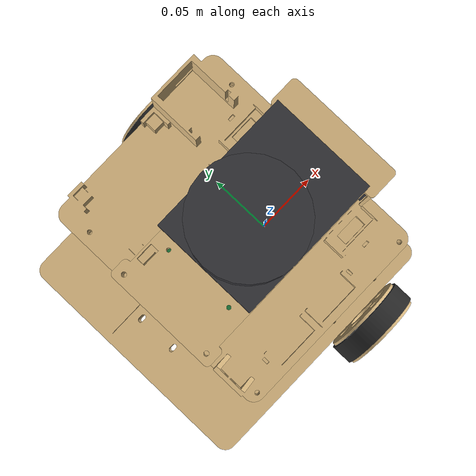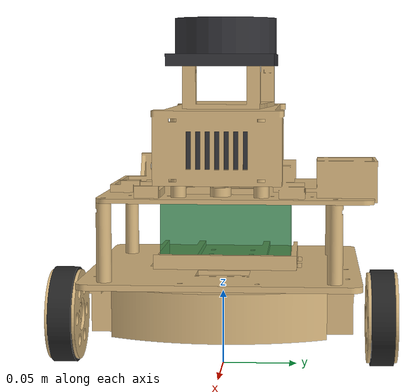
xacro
<?xml version="1.0"?>
<robot name="rover" xmlns:xacro="http://www.ros.org/wiki/xacro">

  <!-- true when spawned in Gazebo: adds ros2_control and physics settings. -->
  <xacro:arg name="use_gazebo" default="false"/>

  <xacro:property name="PI" value="3.14159265358979"/>
  <xacro:property name="mm" value="0.001"/>
  <xacro:property name="mesh_scale" value="0.001 0.001 0.001"/>
  <xacro:property name="mesh_dir" value="package://rover_sim/meshes"/>

  <!-- ===================================================== drive wheels -->
  <xacro:property name="wheel_radius" value="${32.5 * mm}"/>     <!-- 61 mm rim + 3.5 mm TPU tyre -->
  <xacro:property name="wheel_width" value="${20.0 * mm}"/>
  <xacro:property name="wheel_separation" value="${214.6 * mm}"/> <!-- track width, centre to centre -->
  <xacro:property name="wheel_x" value="0.0"/>
  <!-- The wheel mesh's inner face sits 10 mm inboard of the wheel centre;
       the tyre mesh's inner face sits 7.8 mm inboard. -->
  <xacro:property name="wheel_mesh_offset" value="${10.0 * mm}"/>
  <xacro:property name="tyre_mesh_offset" value="${7.8 * mm}"/>

  <!-- base_link is on the axle, so it sits one wheel radius above the floor. -->
  <xacro:property name="base_z" value="${wheel_radius}"/>

  <!-- ========================================================== chassis -->
  <!-- Positions below are in the base_footprint frame (floor = 0) unless
       the name ends in _bl (base_link frame). -->
  <xacro:property name="deck_x_min" value="${-140.0 * mm}"/>
  <xacro:property name="deck_x_max" value="${55.0 * mm}"/>
  <xacro:property name="deck_width" value="${186.0 * mm}"/>
  <xacro:property name="deck_t" value="${4.0 * mm}"/>
  <xacro:property name="deck_bottom_z" value="${58.0 * mm}"/>
  <xacro:property name="deck_length" value="${deck_x_max - deck_x_min}"/>
  <xacro:property name="deck_cx" value="${(deck_x_max + deck_x_min) / 2}"/>

  <!-- Electronics deck. Its posts carry the compute deck above it. -->
  <xacro:property name="upper_x_min" value="${-100.0 * mm}"/>
  <xacro:property name="upper_x_max" value="${50.0 * mm}"/>
  <xacro:property name="upper_y_min" value="${-80.0 * mm}"/>
  <xacro:property name="upper_y_max" value="${100.0 * mm}"/>
  <xacro:property name="upper_t" value="${3.0 * mm}"/>
  <xacro:property name="upper_bottom_z" value="${114.0 * mm}"/>
  <xacro:property name="upper_length" value="${upper_x_max - upper_x_min}"/>
  <xacro:property name="upper_width" value="${upper_y_max - upper_y_min}"/>
  <xacro:property name="upper_cx" value="${(upper_x_max + upper_x_min) / 2}"/>
  <xacro:property name="upper_cy" value="${(upper_y_max + upper_y_min) / 2}"/>
  <xacro:property name="upper_top_z" value="${upper_bottom_z + upper_t}"/>
  <!-- The amp holder's dial wall stands 2 mm past the +Y edge, so the mesh
       spans Y -80..102 and is centred at 11 mm, not on the plate. -->
  <xacro:property name="upper_mesh_cy" value="${11.0 * mm}"/>

  <!-- Compute deck: the Pi hangs under it, the speaker grille is its front
       wall and the lidar mount sits on top. Collision covers the plate only. -->
  <xacro:property name="compute_x_min" value="${-100.0 * mm}"/>
  <xacro:property name="compute_x_max" value="${61.0 * mm}"/>
  <xacro:property name="compute_width" value="${72.0 * mm}"/>
  <xacro:property name="compute_t" value="${4.0 * mm}"/>
  <xacro:property name="compute_bottom_z" value="${170.0 * mm}"/>
  <xacro:property name="compute_top_z" value="${compute_bottom_z + compute_t}"/>
  <xacro:property name="compute_cx" value="${(compute_x_max + compute_x_min) / 2}"/>
  <!-- The compute deck mesh is centred on its full outline, grille included. -->
  <xacro:property name="compute_mesh_x" value="${-19.5 * mm}"/>

  <!-- Front bumper arc, approximated by its bounding box. -->
  <xacro:property name="bumper_x_min" value="${35.0 * mm}"/>
  <xacro:property name="bumper_x_max" value="${63.0 * mm}"/>
  <xacro:property name="bumper_width" value="${140.0 * mm}"/>
  <xacro:property name="bumper_z_min" value="${26.0 * mm}"/>
  <xacro:property name="bumper_z_max" value="${58.0 * mm}"/>

  <!-- Gearmotors (25 mm gearbox), body running inboard from the mount face. -->
  <xacro:property name="motor_radius" value="${12.5 * mm}"/>
  <xacro:property name="motor_y_inner" value="${2.0 * mm}"/>
  <xacro:property name="motor_y_outer" value="${83.8 * mm}"/>
  <xacro:property name="motor_z" value="${39.5 * mm}"/>
  <xacro:property name="motor_length" value="${motor_y_outer - motor_y_inner}"/>
  <!-- Motor cradle mesh origin, per side. -->
  <xacro:property name="cradle_y" value="${87.8 * mm}"/>
  <xacro:property name="cradle_z" value="${40.875 * mm}"/>

  <!-- Battery pack envelope (X x Y x Z) and centre. -->
  <xacro:property name="battery_size_x" value="${70.0 * mm}"/>
  <xacro:property name="battery_size_y" value="${90.0 * mm}"/>
  <xacro:property name="battery_size_z" value="${45.0 * mm}"/>
  <xacro:property name="battery_x" value="${-52.5 * mm}"/>
  <xacro:property name="battery_z" value="${88.5 * mm}"/>

  <!-- Raspberry Pi 3B+, hanging under the compute deck, components down.
       The box is the board plus the parts below it. -->
  <xacro:property name="pi_x_min" value="${-89.0 * mm}"/>
  <xacro:property name="pi_x_max" value="${-4.0 * mm}"/>
  <xacro:property name="pi_width" value="${56.0 * mm}"/>
  <xacro:property name="pi_z_min" value="${145.6 * mm}"/>
  <xacro:property name="pi_z_max" value="${164.0 * mm}"/>

  <!-- Speaker behind the front grille, facing forward. -->
  <xacro:property name="speaker_x_min" value="${41.0 * mm}"/>
  <xacro:property name="speaker_x_max" value="${57.5 * mm}"/>
  <xacro:property name="speaker_width" value="${76.0 * mm}"/>
  <xacro:property name="speaker_z_min" value="${132.0 * mm}"/>
  <xacro:property name="speaker_z_max" value="${166.0 * mm}"/>

  <!-- =========================================================== caster -->
  <xacro:property name="caster_x" value="${-100.0 * mm}"/>
  <xacro:property name="caster_radius" value="${12.5 * mm}"/>   <!-- 25 mm wheel, estimate -->
  <xacro:property name="caster_height" value="${38.0 * mm}"/>
  <xacro:property name="caster_spacer_h" value="${20.0 * mm}"/>
  <!-- The spacer sits on the caster plate; its mesh origin is its bottom. -->
  <xacro:property name="caster_spacer_z" value="${caster_height}"/>

  <!-- ============================================================ lidar -->
  <xacro:property name="lidar_x" value="${-25.0 * mm}"/>          <!-- spin axis -->
  <xacro:property name="lidar_z" value="${223.0 * mm}"/>          <!-- scan plane -->
  <xacro:property name="lidar_mount_x" value="${-18.375 * mm}"/>  <!-- mount mesh origin -->
  <xacro:property name="lidar_base_z" value="${202.0 * mm}"/>     <!-- underside of the lidar base -->
  <xacro:property name="lidar_base_x_min" value="${-60.24 * mm}"/>
  <xacro:property name="lidar_base_length" value="${96.74 * mm}"/>
  <xacro:property name="lidar_base_width" value="${70.28 * mm}"/>
  <xacro:property name="lidar_base_t" value="${8.0 * mm}"/>       <!-- estimate -->
  <xacro:property name="lidar_head_radius" value="${35.0 * mm}"/>
  <xacro:property name="lidar_top_z" value="${234.5 * mm}"/>

  <!-- ============================================================ camera -->
  <!-- Space reserved between the decks; no camera chosen yet. -->
  <xacro:property name="camera_x" value="${55.0 * mm}"/>
  <xacro:property name="camera_z" value="${83.0 * mm}"/>

  <!-- ============================================================ masses -->
  <!-- Printed parts: slicer estimates (PLA, 15 % infill), or STL volume
       x 0.80 g/cm3 for parts not sliced yet ("volume estimate"). -->
  <xacro:property name="lower_deck_mass" value="0.1246"/>
  <xacro:property name="upper_deck_mass" value="0.1048"/>      <!-- volume estimate, with the amp stop wall -->
  <xacro:property name="compute_deck_mass" value="0.0476"/>    <!-- volume estimate -->
  <xacro:property name="lidar_mount_mass" value="0.0173"/>     <!-- volume estimate -->
  <xacro:property name="cradle_mass" value="0.0127"/>          <!-- each -->
  <xacro:property name="caster_spacer_mass" value="0.0104"/>   <!-- volume estimate -->
  <xacro:property name="bumper_mass" value="0.0277"/>
  <xacro:property name="wheel_mass" value="${0.0179 + 0.0147}"/> <!-- PLA rim + TPU tyre, volume estimates -->
  <!-- Purchased parts: "weighed" values are kitchen-scale readings (+/- 1 g);
       the rest are datasheet or typical values until weighed. -->
  <xacro:property name="motor_mass" value="0.100"/>            <!-- each, spec estimate (not arrived) -->
  <xacro:property name="coupler_mass" value="0.012"/>          <!-- each, with screws -->
  <xacro:property name="esp32_mass" value="0.041"/>            <!-- with breakout board, weighed -->
  <xacro:property name="driver_mass" value="0.006"/>           <!-- each motor driver, weighed -->
  <xacro:property name="buck_mass" value="0.025"/>
  <xacro:property name="power_parts_mass" value="0.030"/>      <!-- connectors, capacitor, jack -->
  <xacro:property name="pi_mass" value="0.050"/>               <!-- bare board, weighed -->
  <xacro:property name="speaker_mass" value="0.025"/>          <!-- weighed -->
  <xacro:property name="amp_mass" value="0.005"/>              <!-- PAM8403 board, weighed -->
  <xacro:property name="lidar_mass" value="0.170"/>
  <xacro:property name="lidar_usb_mass" value="0.015"/>        <!-- USB adapter + cable, assumed -->
  <xacro:property name="wiring_mass" value="0.060"/>           <!-- wires + fasteners, assumed -->
  <xacro:property name="battery_mass" value="0.350"/>          <!-- assumed -->
  <xacro:property name="caster_mass" value="0.030"/>

  <xacro:property name="base_items" value="${[
      (lower_deck_mass, deck_cx, 0, deck_bottom_z + deck_t / 2),
      (upper_deck_mass, upper_cx, upper_cy / 2, upper_bottom_z + 8 * mm),
      (compute_deck_mass, compute_cx + 10 * mm, 0, compute_top_z - 8 * mm),
      (lidar_mount_mass, lidar_mount_x, 0, compute_top_z + 14 * mm),
      (cradle_mass, 0, cradle_y, cradle_z),
      (cradle_mass, 0, -cradle_y, cradle_z),
      (caster_spacer_mass, caster_x, 0, caster_spacer_z + caster_spacer_h / 2),
      (bumper_mass, (bumper_x_min + bumper_x_max) / 2, 0, (bumper_z_min + bumper_z_max) / 2),
      (2 * motor_mass, 0, 0, motor_z),
      (2 * coupler_mass, 0, 0, base_z),
      (esp32_mass, -45 * mm, 66 * mm, 137.5 * mm),
      (2 * driver_mass, 26 * mm, 0, 128 * mm),
      (buck_mass, -54 * mm, -16 * mm, 129.5 * mm),
      (power_parts_mass, -40 * mm, -50 * mm, upper_top_z + 6 * mm),
      (pi_mass, (pi_x_min + pi_x_max) / 2, 0, 157 * mm),
      (speaker_mass, (speaker_x_min + speaker_x_max) / 2, 0, (speaker_z_min + speaker_z_max) / 2),
      (amp_mass, 15.75 * mm, 81.5 * mm, 128.5 * mm),
      (lidar_mass, -17 * mm, 0, 207 * mm),
      (lidar_usb_mass, -30 * mm, 0, 183 * mm),
      (wiring_mass, -20 * mm, 0, 100 * mm),
      (battery_mass, battery_x, 0, battery_z)]}"/>
  <xacro:property name="base_mass" value="${python.sum(i[0] for i in base_items)}"/>
  <xacro:property name="base_com_x" value="${python.sum(i[0] * i[1] for i in base_items) / base_mass}"/>
  <xacro:property name="base_com_y" value="${python.sum(i[0] * i[2] for i in base_items) / base_mass}"/>
  <xacro:property name="base_com_z" value="${python.sum(i[0] * i[3] for i in base_items) / base_mass}"/>
  <xacro:property name="base_box_x" value="${bumper_x_max - deck_x_min}"/>
  <xacro:property name="base_box_y" value="${deck_width}"/>
  <xacro:property name="base_box_z" value="${lidar_top_z - (motor_z - motor_radius)}"/>

  <!-- ======================================================== materials -->
  <material name="pla">
    <color rgba="0.85 0.72 0.50 1.0"/>
  </material>
  <material name="tyre">
    <color rgba="0.15 0.15 0.15 1.0"/>
  </material>
  <material name="metal">
    <color rgba="0.60 0.62 0.66 1.0"/>
  </material>
  <material name="board">
    <color rgba="0.10 0.45 0.20 1.0"/>
  </material>
  <material name="dark">
    <color rgba="0.20 0.20 0.22 1.0"/>
  </material>
  <material name="battery">
    <color rgba="0.20 0.55 0.30 0.8"/>
  </material>

  <!-- ===================================================== inertia macros -->
  <xacro:macro name="box_inertial" params="mass x y z *origin">
    <inertial>
      <xacro:insert_block name="origin"/>
      <mass value="${mass}"/>
      <inertia ixx="${mass * (y * y + z * z) / 12}" ixy="0" ixz="0"
               iyy="${mass * (x * x + z * z) / 12}" iyz="0"
               izz="${mass * (x * x + y * y) / 12}"/>
    </inertial>
  </xacro:macro>

  <!-- Solid cylinder whose axis is the link's Y axis. -->
  <xacro:macro name="cylinder_y_inertial" params="mass radius length">
    <inertial>
      <origin xyz="0 0 0" rpy="0 0 0"/>
      <mass value="${mass}"/>
      <inertia ixx="${mass * (3 * radius * radius + length * length) / 12}" ixy="0" ixz="0"
               iyy="${mass * radius * radius / 2}" iyz="0"
               izz="${mass * (3 * radius * radius + length * length) / 12}"/>
    </inertial>
  </xacro:macro>

  <xacro:macro name="sphere_inertial" params="mass radius">
    <inertial>
      <origin xyz="0 0 0" rpy="0 0 0"/>
      <mass value="${mass}"/>
      <inertia ixx="${2 * mass * radius * radius / 5}" ixy="0" ixz="0"
               iyy="${2 * mass * radius * radius / 5}" iyz="0"
               izz="${2 * mass * radius * radius / 5}"/>
    </inertial>
  </xacro:macro>

  <!-- ===================================================== base links -->
  <link name="base_footprint"/>

  <joint name="base_joint" type="fixed">
    <parent link="base_footprint"/>
    <child link="base_link"/>
    <origin xyz="0 0 ${base_z}" rpy="0 0 0"/>
  </joint>

  <link name="base_link">
    <!-- Meshes are exported centred in XY with their lowest point at Z = 0;
         each origin below puts the part back where it sits on the rover. -->
    <visual>
      <origin xyz="${deck_cx} 0 ${deck_bottom_z - base_z}" rpy="0 0 0"/>
      <geometry>
        <mesh filename="${mesh_dir}/lower_deck.stl" scale="${mesh_scale}"/>
      </geometry>
      <material name="pla"/>
    </visual>
    <visual>
      <origin xyz="${upper_cx} ${upper_mesh_cy} ${upper_bottom_z - base_z}" rpy="0 0 0"/>
      <geometry>
        <mesh filename="${mesh_dir}/upper_deck.stl" scale="${mesh_scale}"/>
      </geometry>
      <material name="pla"/>
    </visual>
    <visual>
      <origin xyz="${compute_mesh_x} 0 ${compute_top_z - base_z}" rpy="${PI} 0 0"/>
      <geometry>
        <mesh filename="${mesh_dir}/compute_deck.stl" scale="${mesh_scale}"/>
      </geometry>
      <material name="pla"/>
    </visual>
    <visual>
      <origin xyz="${lidar_mount_x} 0 ${compute_top_z - base_z}" rpy="0 0 0"/>
      <geometry>
        <mesh filename="${mesh_dir}/lidar_mount.stl" scale="${mesh_scale}"/>
      </geometry>
      <material name="pla"/>
    </visual>
    <!-- The bumper, cradles and compute deck are exported in their print
         orientation. -->
    <visual>
      <origin xyz="${(bumper_x_min + bumper_x_max) / 2} 0 ${bumper_z_max - base_z}" rpy="${PI} 0 0"/>
      <geometry>
        <mesh filename="${mesh_dir}/front_bumper.stl" scale="${mesh_scale}"/>
      </geometry>
      <material name="pla"/>
    </visual>
    <visual>
      <origin xyz="${caster_x} 0 ${caster_spacer_z - base_z}" rpy="0 0 0"/>
      <geometry>
        <mesh filename="${mesh_dir}/caster_spacer.stl" scale="${mesh_scale}"/>
      </geometry>
      <material name="pla"/>
    </visual>
    <visual>
      <origin xyz="0 ${cradle_y} ${cradle_z - base_z}" rpy="${PI / 2} 0 0"/>
      <geometry>
        <mesh filename="${mesh_dir}/motor_cradle.stl" scale="${mesh_scale}"/>
      </geometry>
      <material name="pla"/>
    </visual>
    <visual>
      <origin xyz="0 ${-cradle_y} ${cradle_z - base_z}" rpy="${PI / 2} 0 ${PI}"/>
      <geometry>
        <mesh filename="${mesh_dir}/motor_cradle.stl" scale="${mesh_scale}"/>
      </geometry>
      <material name="pla"/>
    </visual>
    <!-- Purchased parts have no mesh; drawn as primitives. -->
    <visual>
      <origin xyz="0 ${(motor_y_inner + motor_y_outer) / 2} ${motor_z - base_z}" rpy="${PI / 2} 0 0"/>
      <geometry>
        <cylinder radius="${motor_radius}" length="${motor_length}"/>
      </geometry>
      <material name="metal"/>
    </visual>
    <visual>
      <origin xyz="0 ${-(motor_y_inner + motor_y_outer) / 2} ${motor_z - base_z}" rpy="${PI / 2} 0 0"/>
      <geometry>
        <cylinder radius="${motor_radius}" length="${motor_length}"/>
      </geometry>
      <material name="metal"/>
    </visual>
    <visual>
      <origin xyz="${battery_x} 0 ${battery_z - base_z}" rpy="0 0 0"/>
      <geometry>
        <box size="${battery_size_x} ${battery_size_y} ${battery_size_z}"/>
      </geometry>
      <material name="battery"/>
    </visual>
    <visual>
      <origin xyz="${(pi_x_min + pi_x_max) / 2} 0 ${(pi_z_min + pi_z_max) / 2 - base_z}" rpy="0 0 0"/>
      <geometry>
        <box size="${pi_x_max - pi_x_min} ${pi_width} ${pi_z_max - pi_z_min}"/>
      </geometry>
      <material name="board"/>
    </visual>
    <visual>
      <origin xyz="${(speaker_x_min + speaker_x_max) / 2} 0 ${(speaker_z_min + speaker_z_max) / 2 - base_z}" rpy="0 0 0"/>
      <geometry>
        <box size="${speaker_x_max - speaker_x_min} ${speaker_width} ${speaker_z_max - speaker_z_min}"/>
      </geometry>
      <material name="dark"/>
    </visual>
    <visual>
      <origin xyz="${lidar_base_x_min + lidar_base_length / 2} 0 ${lidar_base_z + lidar_base_t / 2 - base_z}" rpy="0 0 0"/>
      <geometry>
        <box size="${lidar_base_length} ${lidar_base_width} ${lidar_base_t}"/>
      </geometry>
      <material name="dark"/>
    </visual>
    <visual>
      <origin xyz="${lidar_x} 0 ${(lidar_base_z + lidar_base_t + lidar_top_z) / 2 - base_z}" rpy="0 0 0"/>
      <geometry>
        <cylinder radius="${lidar_head_radius}" length="${lidar_top_z - lidar_base_z - lidar_base_t}"/>
      </geometry>
      <material name="dark"/>
    </visual>

    <collision>
      <origin xyz="${deck_cx} 0 ${deck_bottom_z + deck_t / 2 - base_z}" rpy="0 0 0"/>
      <geometry>
        <box size="${deck_length} ${deck_width} ${deck_t}"/>
      </geometry>
    </collision>
    <collision>
      <origin xyz="${upper_cx} ${upper_cy} ${upper_bottom_z + upper_t / 2 - base_z}" rpy="0 0 0"/>
      <geometry>
        <box size="${upper_length} ${upper_width} ${upper_t}"/>
      </geometry>
    </collision>
    <collision>
      <origin xyz="${compute_cx} 0 ${compute_bottom_z + compute_t / 2 - base_z}" rpy="0 0 0"/>
      <geometry>
        <box size="${compute_x_max - compute_x_min} ${compute_width} ${compute_t}"/>
      </geometry>
    </collision>
    <collision>
      <origin xyz="${(speaker_x_min + speaker_x_max) / 2} 0 ${(speaker_z_min + speaker_z_max) / 2 - base_z}" rpy="0 0 0"/>
      <geometry>
        <box size="${speaker_x_max - speaker_x_min} ${speaker_width} ${speaker_z_max - speaker_z_min}"/>
      </geometry>
    </collision>
    <collision>
      <origin xyz="${lidar_x} 0 ${(lidar_base_z + lidar_top_z) / 2 - base_z}" rpy="0 0 0"/>
      <geometry>
        <cylinder radius="${lidar_head_radius}" length="${lidar_top_z - lidar_base_z}"/>
      </geometry>
    </collision>
    <collision>
      <origin xyz="${(bumper_x_min + bumper_x_max) / 2} 0 ${(bumper_z_min + bumper_z_max) / 2 - base_z}" rpy="0 0 0"/>
      <geometry>
        <box size="${bumper_x_max - bumper_x_min} ${bumper_width} ${bumper_z_max - bumper_z_min}"/>
      </geometry>
    </collision>
    <collision>
      <origin xyz="0 0 ${motor_z - base_z}" rpy="${PI / 2} 0 0"/>
      <geometry>
        <cylinder radius="${motor_radius}" length="${2 * motor_y_outer}"/>
      </geometry>
    </collision>
    <collision>
      <origin xyz="${battery_x} 0 ${battery_z - base_z}" rpy="0 0 0"/>
      <geometry>
        <box size="${battery_size_x} ${battery_size_y} ${battery_size_z}"/>
      </geometry>
    </collision>

    <xacro:box_inertial mass="${base_mass}" x="${base_box_x}" y="${base_box_y}" z="${base_box_z}">
      <origin xyz="${base_com_x} ${base_com_y} ${base_com_z - base_z}" rpy="0 0 0"/>
    </xacro:box_inertial>
  </link>

  <!-- ============================================================ wheels -->
  <!-- side: 1 = left (+Y), -1 = right (-Y). Both joints spin about +Y, so a
       positive velocity drives the rover forward on both sides. -->
  <xacro:macro name="drive_wheel" params="prefix side">
    <link name="${prefix}_wheel_link">
      <visual>
        <origin xyz="0 ${-side * wheel_mesh_offset} 0" rpy="${-PI / 2} 0 ${(1 - side) * PI / 2}"/>
        <geometry>
          <mesh filename="${mesh_dir}/drive_wheel.stl" scale="${mesh_scale}"/>
        </geometry>
        <material name="pla"/>
      </visual>
      <visual>
        <origin xyz="0 ${-side * tyre_mesh_offset} 0" rpy="${-PI / 2} 0 ${(1 - side) * PI / 2}"/>
        <geometry>
          <mesh filename="${mesh_dir}/tyre.stl" scale="${mesh_scale}"/>
        </geometry>
        <material name="tyre"/>
      </visual>
      <collision>
        <xacro:if value="$(arg use_gazebo)">
          <geometry>
            <sphere radius="${wheel_radius}"/>
          </geometry>
        </xacro:if>
        <xacro:unless value="$(arg use_gazebo)">
          <origin xyz="0 0 0" rpy="${PI / 2} 0 0"/>
          <geometry>
            <cylinder radius="${wheel_radius}" length="${wheel_width}"/>
          </geometry>
        </xacro:unless>
      </collision>
      <xacro:cylinder_y_inertial mass="${wheel_mass}" radius="${wheel_radius}" length="${wheel_width}"/>
    </link>

    <joint name="${prefix}_wheel_joint" type="continuous">
      <parent link="base_link"/>
      <child link="${prefix}_wheel_link"/>
      <origin xyz="${wheel_x} ${side * wheel_separation / 2} 0" rpy="0 0 0"/>
      <axis xyz="0 1 0"/>
    </joint>
  </xacro:macro>

  <xacro:drive_wheel prefix="left" side="1"/>
  <xacro:drive_wheel prefix="right" side="-1"/>

  <!-- ============================================================ caster -->
  <link name="caster_link">
    <visual>
      <geometry>
        <sphere radius="${caster_radius}"/>
      </geometry>
      <material name="metal"/>
    </visual>
    <collision>
      <geometry>
        <sphere radius="${caster_radius}"/>
      </geometry>
    </collision>
    <xacro:sphere_inertial mass="${caster_mass}" radius="${caster_radius}"/>
  </link>

  <joint name="caster_joint" type="fixed">
    <parent link="base_link"/>
    <child link="caster_link"/>
    <origin xyz="${caster_x} 0 ${caster_radius - base_z}" rpy="0 0 0"/>
  </joint>

  <!-- ==================================================== sensor frames -->
  <link name="lidar_link"/>

  <joint name="lidar_joint" type="fixed">
    <parent link="base_link"/>
    <child link="lidar_link"/>
    <origin xyz="${lidar_x} 0 ${lidar_z - base_z}" rpy="0 0 0"/>
  </joint>

  <link name="camera_link"/>

  <joint name="camera_joint" type="fixed">
    <parent link="base_link"/>
    <child link="camera_link"/>
    <origin xyz="${camera_x} 0 ${camera_z - base_z}" rpy="0 0 0"/>
  </joint>

  <xacro:if value="$(arg use_gazebo)">
    <xacro:include filename="rover.gazebo.xacro"/>
  </xacro:if>

</robot>
